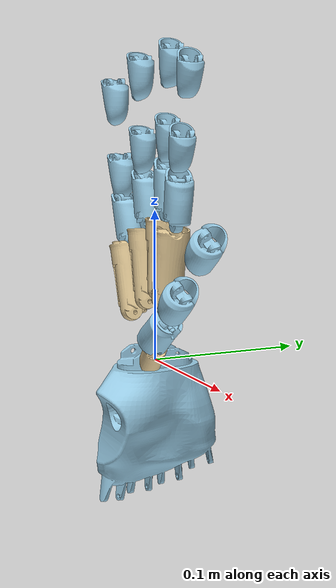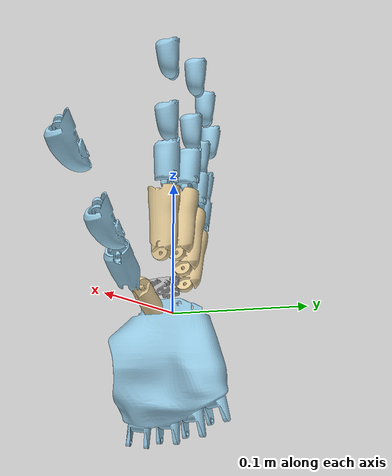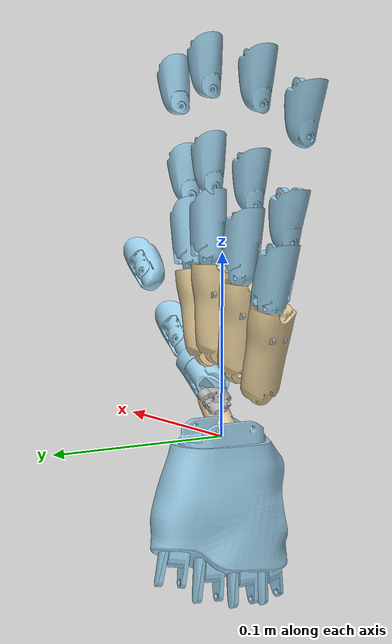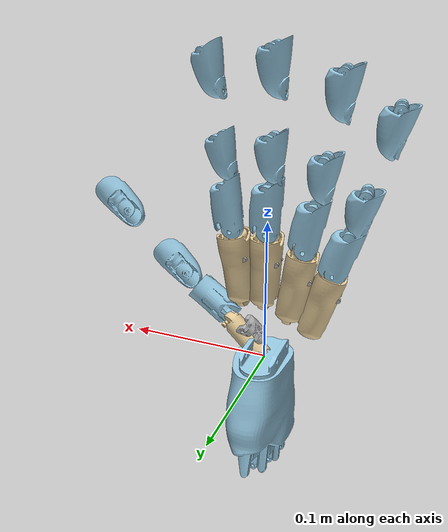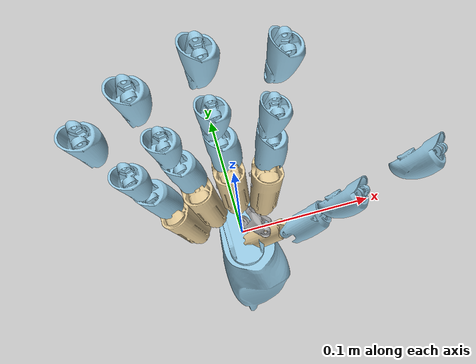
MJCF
<?xml version='1.0' encoding='utf-8'?>
<mujoco model="wujihand-right">
  <compiler angle="radian" meshdir="./" />

  <option jacobian="sparse" integrator="RK4" timestep="0.002" solver="Newton" iterations="50" tolerance="1e-10" /><default><joint armature="0.0002" damping="0.0" /></default><asset>
    <mesh name="right_palm_link" content_type="model/stl" file="../meshes/right/right_palm_link.STL" />
    <mesh name="right_finger1_link1" content_type="model/stl" file="../meshes/right/right_finger1_link1.STL" />
    <mesh name="right_finger1_link2" content_type="model/stl" file="../meshes/right/right_finger1_link2.STL" />
    <mesh name="right_finger1_link3" content_type="model/stl" file="../meshes/right/right_finger1_link3.STL" />
    <mesh name="right_finger1_link4" content_type="model/stl" file="../meshes/right/right_finger1_link4.STL" />
    <mesh name="right_finger1_tip_link" content_type="model/stl" file="../meshes/right/right_finger1_tip_link.STL" />
    <mesh name="right_finger2_link1" content_type="model/stl" file="../meshes/right/right_finger2_link1.STL" />
    <mesh name="right_finger2_link2" content_type="model/stl" file="../meshes/right/right_finger2_link2.STL" />
    <mesh name="right_finger2_link3" content_type="model/stl" file="../meshes/right/right_finger2_link3.STL" />
    <mesh name="right_finger2_link4" content_type="model/stl" file="../meshes/right/right_finger2_link4.STL" />
    <mesh name="right_finger2_tip_link" content_type="model/stl" file="../meshes/right/right_finger2_tip_link.STL" />
    <mesh name="right_finger3_link1" content_type="model/stl" file="../meshes/right/right_finger3_link1.STL" />
    <mesh name="right_finger3_link2" content_type="model/stl" file="../meshes/right/right_finger3_link2.STL" />
    <mesh name="right_finger3_link3" content_type="model/stl" file="../meshes/right/right_finger3_link3.STL" />
    <mesh name="right_finger3_link4" content_type="model/stl" file="../meshes/right/right_finger3_link4.STL" />
    <mesh name="right_finger3_tip_link" content_type="model/stl" file="../meshes/right/right_finger3_tip_link.STL" />
    <mesh name="right_finger4_link1" content_type="model/stl" file="../meshes/right/right_finger4_link1.STL" />
    <mesh name="right_finger4_link2" content_type="model/stl" file="../meshes/right/right_finger4_link2.STL" />
    <mesh name="right_finger4_link3" content_type="model/stl" file="../meshes/right/right_finger4_link3.STL" />
    <mesh name="right_finger4_link4" content_type="model/stl" file="../meshes/right/right_finger4_link4.STL" />
    <mesh name="right_finger4_tip_link" content_type="model/stl" file="../meshes/right/right_finger4_tip_link.STL" />
    <mesh name="right_finger5_link1" content_type="model/stl" file="../meshes/right/right_finger5_link1.STL" />
    <mesh name="right_finger5_link2" content_type="model/stl" file="../meshes/right/right_finger5_link2.STL" />
    <mesh name="right_finger5_link3" content_type="model/stl" file="../meshes/right/right_finger5_link3.STL" />
    <mesh name="right_finger5_link4" content_type="model/stl" file="../meshes/right/right_finger5_link4.STL" />
    <mesh name="right_finger5_tip_link" content_type="model/stl" file="../meshes/right/right_finger5_tip_link.STL" />
  </asset>

  <worldbody>
    <body name="right_base_link"><body name="right_palm_link" quat="0 1 0 0"><inertial pos="-0.00464638201985227 -0.00350423603669706 -0.0355450772461747" mass="0.16914" quat="-0.01772809 -0.04274722 0.09308295 0.99458230" diaginertia="1.40677446e-04 9.58896475e-05 5.81329061e-05" /><geom type="mesh" contype="0" conaffinity="0" group="1" density="0" rgba="0.6 0.8 0.9 1" mesh="right_palm_link" />
    <geom type="mesh" rgba="0.6 0.8 0.9 1" mesh="right_palm_link" contype="1" conaffinity="1" />
    <body name="right_finger1_link1" pos="0.0166603 0.00812975 -0.0170174" quat="0.641145 -0.0560941 -0.709615 0.286764">
      <inertial pos="0.000842658 -0.00194261 -0.00731566" quat="0.904243 0.21652 0.0443878 -0.365368" mass="0.0075" diaginertia="3.37599e-07 3.01198e-07 2.11203e-07" />
      <joint name="right_finger1_joint1" pos="0 0 0" axis="1 0 0" range="-1.187 1.291" actuatorfrcrange="-0.6 0.6" armature="0.0005" />
      <geom type="mesh" contype="0" conaffinity="0" group="1" density="0" rgba="0.7 0.7 0.7 1" mesh="right_finger1_link1" />
      <geom type="mesh" rgba="0.7 0.7 0.7 1" mesh="right_finger1_link1" contype="0" conaffinity="0" />
      <body name="right_finger1_link2" pos="0.000247879 -0.00053658 -0.0147535" quat="0.934711 0.0919299 0.342518 -0.0233669">
        <inertial pos="1.21917e-05 7.81224e-06 -0.0130404" quat="0.815906 0.0024483 -0.00462559 0.57816" mass="0.0248" diaginertia="2.81725e-06 2.75299e-06 6.79766e-07" />
        <joint name="right_finger1_joint2" pos="0 0 0" axis="0 1 0" range="-1.484 0.698" actuatorfrcrange="-0.6 0.6" armature="0.0005" />
        <geom type="mesh" contype="0" conaffinity="0" group="1" density="0" rgba="0.9 0.8 0.6 1" mesh="right_finger1_link2" />
        <geom type="mesh" rgba="0.9 0.8 0.6 1" mesh="right_finger1_link2" contype="2" conaffinity="2" />
        <body name="right_finger1_link3" pos="0 0 -0.0325" quat="0.957006 -0.0650473 0.0264059 0.281446">
          <inertial pos="-5.00306e-05 0.00157291 -0.0142059" quat="0.999951 0 0.00989566 0" mass="0.0165" diaginertia="1.4604e-06 1.42e-06 4.49604e-07" />
          <joint name="right_finger1_joint3" pos="0 0 0" axis="1 0 0" range="-1.047 1.57" actuatorfrcrange="-0.3 0.3" />
          <geom type="mesh" contype="0" conaffinity="0" group="1" density="0" rgba="0.6 0.8 0.9 1" mesh="right_finger1_link3" />
          <geom type="mesh" rgba="0.6 0.8 0.9 1" mesh="right_finger1_link3" contype="1" conaffinity="1" />
          <body name="right_finger1_link4" pos="-5e-05 0.00385197 -0.0347874" quat="0.99848 0.0551119 0 0">
            <inertial pos="0.000390808 -0.00058638 -0.0108687" quat="0.705257 -0.0511137 -0.0511137 0.705257" mass="0.0206" diaginertia="1.78268e-06 1.75035e-06 7.72325e-07" />
            <joint name="right_finger1_joint4" pos="0 0 0" axis="1 0 0" range="-1.047 1.57" actuatorfrcrange="-0.3 0.3" />
            <geom type="mesh" contype="0" conaffinity="0" group="1" density="0" rgba="0.6 0.8 0.9 1" mesh="right_finger1_link4" />
            <geom type="mesh" rgba="0.6 0.8 0.9 1" mesh="right_finger1_link4" contype="1" conaffinity="1" />
            <geom pos="0 -0.000557449 -0.0276973" quat="1 0 0 0" type="mesh" contype="0" conaffinity="0" group="1" density="0" rgba="0.6 0.8 0.9 1" mesh="right_finger1_tip_link" />
            <geom pos="0 -0.000557449 -0.0276973" quat="1 0 0 0" type="mesh" rgba="0.6 0.8 0.9 1" mesh="right_finger1_tip_link" contype="1" conaffinity="1" />
          </body>
        </body>
      </body>
    </body>
    <body name="right_finger2_link1" pos="0.0203529 -0.00336012 -0.0706794" quat="0.997389 -0.00260714 -0.0523459 0.0496759">
      <inertial pos="-1.18064e-08 -0.0019786 -0.00754997" quat="0.92388 0 0.382683 0" mass="0.0032" diaginertia="1.1e-07 7e-08 5e-08" />
      <joint name="right_finger2_joint1" pos="0 0 0" axis="1 0 0" range="-1.047 1.57" actuatorfrcrange="-2.0 2.0" armature="0.0005" />
      <geom type="mesh" contype="0" conaffinity="0" group="1" density="0" rgba="0.7 0.7 0.7 1" mesh="right_finger2_link1" />
      <geom type="mesh" rgba="0.7 0.7 0.7 1" mesh="right_finger2_link1" contype="0" conaffinity="0" />
      <body name="right_finger2_link2" pos="0 -0.00158514 -0.014463" quat="0.999912 -0.0132627 0 0">
        <inertial pos="-6.82662e-09 4.92159e-07 -0.0187992" quat="0.70703 0.0104245 0.0104245 0.70703" mass="0.033" diaginertia="6.34e-06 6.31472e-06 8.85281e-07" />
        <joint name="right_finger2_joint2" pos="0 0 0" axis="0 1 0" range="-0.698 0.698" actuatorfrcrange="-0.2 0.2" />
        <geom type="mesh" contype="0" conaffinity="0" group="1" density="0" rgba="0.9 0.8 0.6 1" mesh="right_finger2_link2" />
        <geom type="mesh" rgba="0.9 0.8 0.6 1" mesh="right_finger2_link2" contype="2" conaffinity="2" />
        <body name="right_finger2_link3" pos="0 0 -0.0376">
          <inertial pos="2.02494e-08 -0.000247461 -0.0190489" quat="0.999892 0 -0.0146884 0" mass="0.0165" diaginertia="1.47088e-06 1.44e-06 4.49118e-07" />
          <joint name="right_finger2_joint3" pos="0 0 0" axis="1 0 0" range="-1.047 2.094" actuatorfrcrange="-0.3 0.3" />
          <geom type="mesh" contype="0" conaffinity="0" group="1" density="0" rgba="0.6 0.8 0.9 1" mesh="right_finger2_link3" />
          <geom type="mesh" rgba="0.6 0.8 0.9 1" mesh="right_finger2_link3" contype="1" conaffinity="1" />
          <body name="right_finger2_link4" pos="0 0 -0.0295">
            <inertial pos="0.000309521 -0.000354484 -0.0119913" quat="0.994716 -0.00249279 -0.0935526 -0.0422068" mass="0.01718" diaginertia="1.18451e-06 1.0766e-06 4.17871e-07" />
            <joint name="right_finger2_joint4" pos="0 0 0" axis="1 0 0" range="-1.047 1.57" actuatorfrcrange="-0.3 0.3" />
            <geom type="mesh" contype="0" conaffinity="0" group="1" density="0" rgba="0.6 0.8 0.9 1" mesh="right_finger2_link4" />
            <geom type="mesh" rgba="0.6 0.8 0.9 1" mesh="right_finger2_link4" contype="1" conaffinity="1" />
            <geom pos="0 -0.0016722 -0.025" quat="1 0 0 0" type="mesh" contype="0" conaffinity="0" group="1" density="0" rgba="0.6 0.8 0.9 1" mesh="right_finger2_tip_link" />
            <geom pos="0 -0.0016722 -0.025" quat="1 0 0 0" type="mesh" rgba="0.6 0.8 0.9 1" mesh="right_finger2_tip_link" contype="1" conaffinity="1" />
          </body>
        </body>
      </body>
    </body>
    <body name="right_finger3_link1" pos="-0.00147348 -0.00833994 -0.0739026" quat="0.999612 -0.0172035 0.0219273 1.68266e-05">
      <inertial pos="-1.13942e-08 -0.00177765 -0.0075998" quat="0.92388 0 0.382683 0" mass="0.0032" diaginertia="1.1e-07 7e-08 5e-08" />
      <joint name="right_finger3_joint1" pos="0 0 0" axis="1 0 0" range="-1.047 1.57" actuatorfrcrange="-2.0 2.0" armature="0.0005" />
      <geom type="mesh" contype="0" conaffinity="0" group="1" density="0" rgba="0.7 0.7 0.7 1" mesh="right_finger3_link1" />
      <geom type="mesh" rgba="0.7 0.7 0.7 1" mesh="right_finger3_link1" contype="0" conaffinity="0" />
      <body name="right_finger3_link2" pos="0 -0.00120098 -0.0145">
        <inertial pos="-9.21529e-09 4.93115e-07 -0.0187992" quat="0.70703 0.0104245 0.0104245 0.70703" mass="0.033" diaginertia="6.34e-06 6.31472e-06 8.85281e-07" />
        <joint name="right_finger3_joint2" pos="0 0 0" axis="0 1 0" range="-0.698 0.698" actuatorfrcrange="-0.2 0.2" />
        <geom type="mesh" contype="0" conaffinity="0" group="1" density="0" rgba="0.9 0.8 0.6 1" mesh="right_finger3_link2" />
        <geom type="mesh" rgba="0.9 0.8 0.6 1" mesh="right_finger3_link2" contype="2" conaffinity="2" />
        <body name="right_finger3_link3" pos="0 0 -0.0376">
          <inertial pos="6.24107e-08 -0.00024748 -0.0190489" quat="0.999892 0 -0.0146884 0" mass="0.0165" diaginertia="1.47088e-06 1.44e-06 4.49118e-07" />
          <joint name="right_finger3_joint3" pos="0 0 0" axis="1 0 0" range="-1.047 2.094" actuatorfrcrange="-0.3 0.3" />
          <geom type="mesh" contype="0" conaffinity="0" group="1" density="0" rgba="0.6 0.8 0.9 1" mesh="right_finger3_link3" />
          <geom type="mesh" rgba="0.6 0.8 0.9 1" mesh="right_finger3_link3" contype="1" conaffinity="1" />
          <body name="right_finger3_link4" pos="0 0 -0.0295" quat="0.999852 0.0171998 0 0">
            <inertial pos="0.000468509 -0.000690239 -0.0119535" quat="0.99269 0.00137259 -0.0959255 -0.0732358" mass="0.01718" diaginertia="1.19108e-06 1.08443e-06 4.30218e-07" />
            <joint name="right_finger3_joint4" pos="0 0 0" axis="1 0 0" range="-1.047 1.57" actuatorfrcrange="-0.3 0.3" />
            <geom type="mesh" contype="0" conaffinity="0" group="1" density="0" rgba="0.6 0.8 0.9 1" mesh="right_finger3_link4" />
            <geom type="mesh" rgba="0.6 0.8 0.9 1" mesh="right_finger3_link4" contype="1" conaffinity="1" />
            <geom pos="0 -0.00253107 -0.0249277" quat="0.999852 -0.0171998 0 0" type="mesh" contype="0" conaffinity="0" group="1" density="0" rgba="0.6 0.8 0.9 1" mesh="right_finger3_tip_link" />
            <geom pos="0 -0.00253107 -0.0249277" quat="0.999852 -0.0171998 0 0" type="mesh" rgba="0.6 0.8 0.9 1" mesh="right_finger3_tip_link" contype="1" conaffinity="1" />
          </body>
        </body>
      </body>
    </body>
    <body name="right_finger4_link1" pos="-0.0218789 -0.0056256 -0.0647141" quat="0.995597 -0.00668288 0.0873356 -0.0333901">
      <inertial pos="-1.12516e-08 -0.00177765 -0.00759979" quat="0.92388 0 0.382683 0" mass="0.0032" diaginertia="1.1e-07 7e-08 5e-08" />
      <joint name="right_finger4_joint1" pos="0 0 0" axis="1 0 0" range="-1.047 1.57" actuatorfrcrange="-2.0 2.0" armature="0.0005" />
      <geom type="mesh" contype="0" conaffinity="0" group="1" density="0" rgba="0.7 0.7 0.7 1" mesh="right_finger4_link1" />
      <geom type="mesh" rgba="0.7 0.7 0.7 1" mesh="right_finger4_link1" contype="0" conaffinity="0" />
      <body name="right_finger4_link2" pos="0 -0.00120098 -0.0145">
        <inertial pos="-9.30944e-09 4.93686e-07 -0.0187992" quat="0.70703 0.0104245 0.0104245 0.70703" mass="0.033" diaginertia="6.34e-06 6.31472e-06 8.85281e-07" />
        <joint name="right_finger4_joint2" pos="0 0 0" axis="0 1 0" range="-0.698 0.698" actuatorfrcrange="-0.2 0.2" />
        <geom type="mesh" contype="0" conaffinity="0" group="1" density="0" rgba="0.9 0.8 0.6 1" mesh="right_finger4_link2" />
        <geom type="mesh" rgba="0.9 0.8 0.6 1" mesh="right_finger4_link2" contype="2" conaffinity="2" />
        <body name="right_finger4_link3" pos="0 0 -0.0376">
          <inertial pos="4.5523e-08 -0.00024747 -0.0190489" quat="0.999892 0 -0.0146884 0" mass="0.0165" diaginertia="1.47088e-06 1.44e-06 4.49118e-07" />
          <joint name="right_finger4_joint3" pos="0 0 0" axis="1 0 0" range="-1.047 2.094" actuatorfrcrange="-0.3 0.3" />
          <geom type="mesh" contype="0" conaffinity="0" group="1" density="0" rgba="0.6 0.8 0.9 1" mesh="right_finger4_link3" />
          <geom type="mesh" rgba="0.6 0.8 0.9 1" mesh="right_finger4_link3" contype="1" conaffinity="1" />
          <body name="right_finger4_link4" pos="0 0 -0.0295">
            <inertial pos="0.00030954 -0.00035448 -0.0119913" quat="0.994716 -0.00249279 -0.0935526 -0.0422068" mass="0.01718" diaginertia="1.18451e-06 1.0766e-06 4.17871e-07" />
            <joint name="right_finger4_joint4" pos="0 0 0" axis="1 0 0" range="-1.047 1.57" actuatorfrcrange="-0.3 0.3" />
            <geom type="mesh" contype="0" conaffinity="0" group="1" density="0" rgba="0.6 0.8 0.9 1" mesh="right_finger4_link4" />
            <geom type="mesh" rgba="0.6 0.8 0.9 1" mesh="right_finger4_link4" contype="1" conaffinity="1" />
            <geom pos="0 -0.0016722 -0.025" quat="1 0 0 0" type="mesh" contype="0" conaffinity="0" group="1" density="0" rgba="0.6 0.8 0.9 1" mesh="right_finger4_tip_link" />
            <geom pos="0 -0.0016722 -0.025" quat="1 0 0 0" type="mesh" rgba="0.6 0.8 0.9 1" mesh="right_finger4_tip_link" contype="1" conaffinity="1" />
          </body>
        </body>
      </body>
    </body>
    <body name="right_finger5_link1" pos="-0.039145 -0.00076138 -0.054041" quat="0.987808 -0.00770747 0.141027 -0.0654847">
      <inertial pos="-1.10001e-08 -0.00177766 -0.00759979" quat="0.92388 0 0.382683 0" mass="0.0032" diaginertia="1.1e-07 7e-08 5e-08" />
      <joint name="right_finger5_joint1" pos="0 0 0" axis="1 0 0" range="-1.047 1.57" actuatorfrcrange="-2.0 2.0" armature="0.0005" />
      <geom type="mesh" contype="0" conaffinity="0" group="1" density="0" rgba="0.7 0.7 0.7 1" mesh="right_finger5_link1" />
      <geom type="mesh" rgba="0.7 0.7 0.7 1" mesh="right_finger5_link1" contype="0" conaffinity="0" />
      <body name="right_finger5_link2" pos="0 -0.001201 -0.0145" quat="1 0 0 1.81365e-05">
        <inertial pos="-7.38664e-09 2.44707e-07 -0.0167867" quat="0.70703 0.0104245 0.0104245 0.70703" mass="0.033" diaginertia="6.34e-06 6.31472e-06 8.85281e-07" />
        <joint name="right_finger5_joint2" pos="0 0 0" axis="0 1 0" range="-0.698 0.698" actuatorfrcrange="-0.2 0.2" />
        <geom type="mesh" contype="0" conaffinity="0" group="1" density="0" rgba="0.9 0.8 0.6 1" mesh="right_finger5_link2" />
        <geom type="mesh" rgba="0.9 0.8 0.6 1" mesh="right_finger5_link2" contype="2" conaffinity="2" />
        <body name="right_finger5_link3" pos="0.0001 0 -0.0336" quat="1 0 0 -1.81365e-05">
          <inertial pos="3.08847e-08 -0.000264216 -0.0178974" quat="0.999892 0 -0.0146884 0" mass="0.0165" diaginertia="1.47088e-06 1.44e-06 4.49118e-07" />
          <joint name="right_finger5_joint3" pos="0 0 0" axis="1 0 0" range="-1.047 2.094" actuatorfrcrange="-0.3 0.3" />
          <geom type="mesh" contype="0" conaffinity="0" group="1" density="0" rgba="0.6 0.8 0.9 1" mesh="right_finger5_link3" />
          <geom type="mesh" rgba="0.6 0.8 0.9 1" mesh="right_finger5_link3" contype="1" conaffinity="1" />
          <body name="right_finger5_link4" pos="0 0 -0.0275">
            <inertial pos="0.000309555 -0.000260983 -0.0121005" quat="0.994716 -0.00249279 -0.0935526 -0.0422068" mass="0.01718" diaginertia="1.18451e-06 1.0766e-06 4.17871e-07" />
            <joint name="right_finger5_joint4" pos="0 0 0" axis="1 0 0" range="-1.047 1.57" actuatorfrcrange="-0.3 0.3" />
            <geom type="mesh" contype="0" conaffinity="0" group="1" density="0" rgba="0.6 0.8 0.9 1" mesh="right_finger5_link4" />
            <geom type="mesh" rgba="0.6 0.8 0.9 1" mesh="right_finger5_link4" contype="1" conaffinity="1" />
            <geom pos="0 -0.0016722 -0.025" quat="1 0 0 0" type="mesh" contype="0" conaffinity="0" group="1" density="0" rgba="0.6 0.8 0.9 1" mesh="right_finger5_tip_link" />
            <geom pos="0 -0.0016722 -0.025" quat="1 0 0 0" type="mesh" rgba="0.6 0.8 0.9 1" mesh="right_finger5_tip_link" contype="1" conaffinity="1" />
          </body>
        </body>
      </body>
    </body>
  </body></body></worldbody>
  <actuator>
    <position name="right_finger1_joint1_actuator" joint="right_finger1_joint1" kp="0.40844710645048043" kv="0.020882010257063675" ctrlrange="-1.187 1.291" forcerange="-0.6 0.6" />
    <position name="right_finger1_joint2_actuator" joint="right_finger1_joint2" kp="0.6858601063643346" kv="0.030610939996373314" ctrlrange="-1.484 0.698" forcerange="-0.6 0.6" />
    <position name="right_finger1_joint3_actuator" joint="right_finger1_joint3" kp="0.2391112196099482" kv="0.010181475050560962" ctrlrange="-1.047 1.57" forcerange="-0.3 0.3" />
    <position name="right_finger1_joint4_actuator" joint="right_finger1_joint4" kp="0.20736128319711747" kv="0.00909698844675045" ctrlrange="-1.047 1.57" forcerange="-0.3 0.3" />
    <position name="right_finger2_joint1_actuator" joint="right_finger2_joint1" kp="0.37352218155860073" kv="0.01882274330029718" ctrlrange="-1.047 1.57" forcerange="-2.0 2.0" />
    <position name="right_finger2_joint2_actuator" joint="right_finger2_joint2" kp="0.45592448909027794" kv="0.019798167597016643" ctrlrange="-0.698 0.698" forcerange="-0.2 0.2" />
    <position name="right_finger2_joint3_actuator" joint="right_finger2_joint3" kp="0.24368366649522863" kv="0.010477031953162727" ctrlrange="-1.047 2.094" forcerange="-0.3 0.3" />
    <position name="right_finger2_joint4_actuator" joint="right_finger2_joint4" kp="0.18026971340925335" kv="0.008240212147903584" ctrlrange="-1.047 1.57" forcerange="-0.3 0.3" />
    <position name="right_finger3_joint1_actuator" joint="right_finger3_joint1" kp="0.3687093483646485" kv="0.01848622487024593" ctrlrange="-1.047 1.57" forcerange="-2.0 2.0" />
    <position name="right_finger3_joint2_actuator" joint="right_finger3_joint2" kp="0.4164253443634641" kv="0.018032947229953678" ctrlrange="-0.698 0.698" forcerange="-0.2 0.2" />
    <position name="right_finger3_joint3_actuator" joint="right_finger3_joint3" kp="0.22218607502059182" kv="0.009592200014076666" ctrlrange="-1.047 2.094" forcerange="-0.3 0.3" />
    <position name="right_finger3_joint4_actuator" joint="right_finger3_joint4" kp="0.19427606072023446" kv="0.009152994605972402" ctrlrange="-1.047 1.57" forcerange="-0.3 0.3" />
    <position name="right_finger4_joint1_actuator" joint="right_finger4_joint1" kp="0.35718151495111794" kv="0.018376606800780005" ctrlrange="-1.047 1.57" forcerange="-2.0 2.0" />
    <position name="right_finger4_joint2_actuator" joint="right_finger4_joint2" kp="0.42977315313086895" kv="0.01867700966212433" ctrlrange="-0.698 0.698" forcerange="-0.2 0.2" />
    <position name="right_finger4_joint3_actuator" joint="right_finger4_joint3" kp="0.24930151196247122" kv="0.01059512121009555" ctrlrange="-1.047 2.094" forcerange="-0.3 0.3" />
    <position name="right_finger4_joint4_actuator" joint="right_finger4_joint4" kp="0.2285032688178066" kv="0.009917602877441107" ctrlrange="-1.047 1.57" forcerange="-0.3 0.3" />
    <position name="right_finger5_joint1_actuator" joint="right_finger5_joint1" kp="0.3655325975433942" kv="0.018616960278988272" ctrlrange="-1.047 1.57" forcerange="-2.0 2.0" />
    <position name="right_finger5_joint2_actuator" joint="right_finger5_joint2" kp="0.41393113081120425" kv="0.018732177029667153" ctrlrange="-0.698 0.698" forcerange="-0.2 0.2" />
    <position name="right_finger5_joint3_actuator" joint="right_finger5_joint3" kp="0.22729367621965954" kv="0.00951005441616486" ctrlrange="-1.047 2.094" forcerange="-0.3 0.3" />
    <position name="right_finger5_joint4_actuator" joint="right_finger5_joint4" kp="0.1964723550341816" kv="0.009017295241756363" ctrlrange="-1.047 1.57" forcerange="-0.3 0.3" />
  </actuator>
</mujoco>
